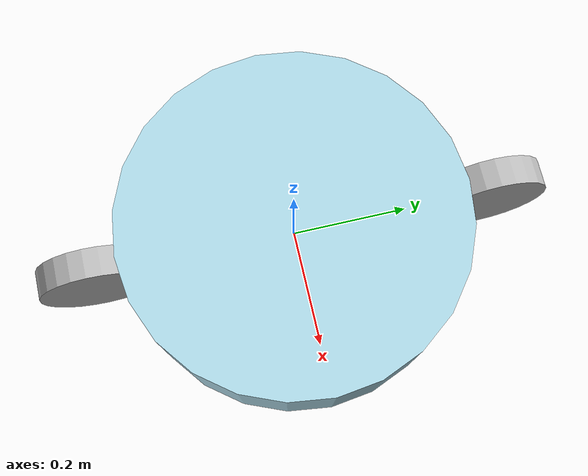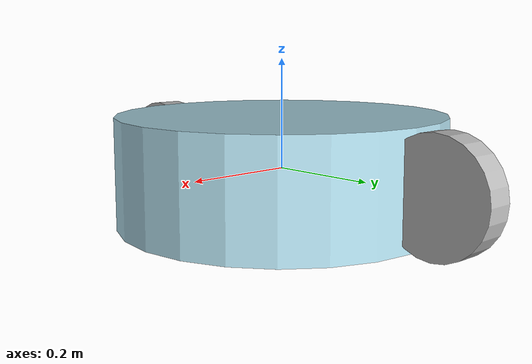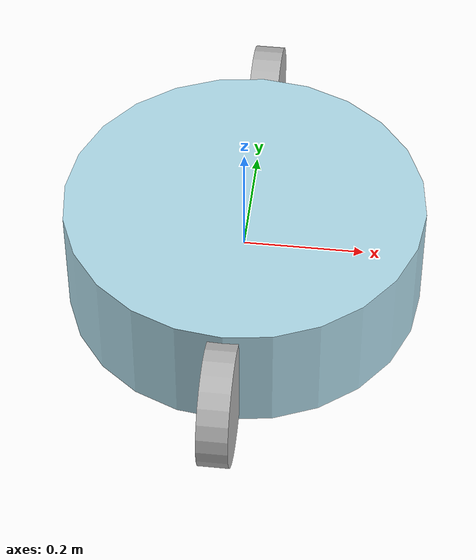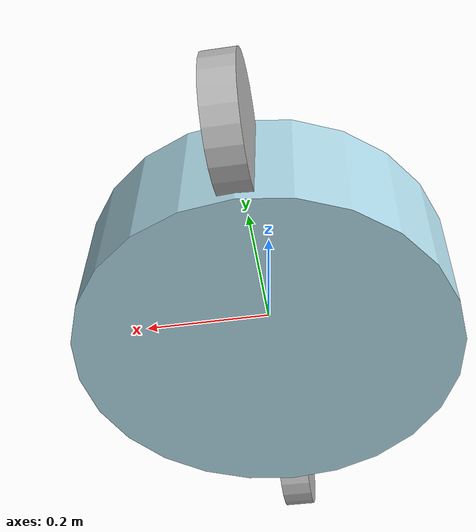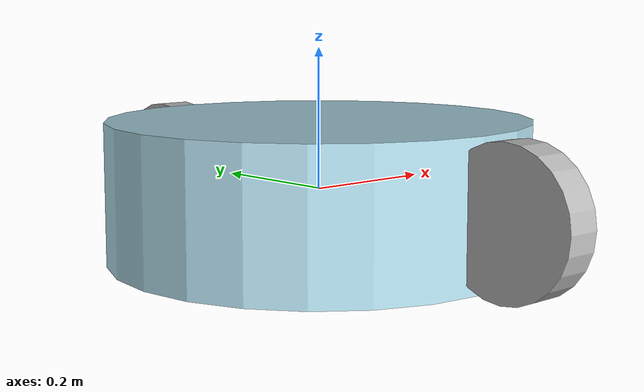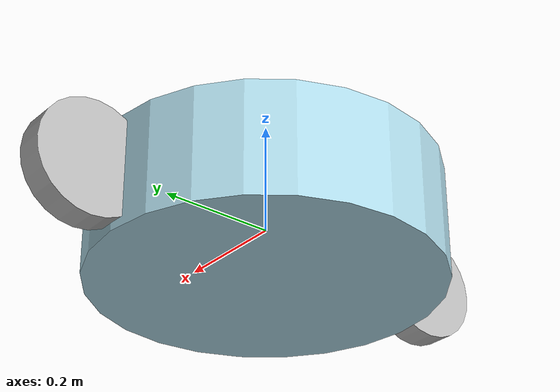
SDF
<?xml version='1.0'?>
<sdf version='1.7'>
  <model name='cleaner_robot_1'>
    <link name='base_link'>
      <inertial>
        <mass>5</mass>
        <inertia>
          <ixx>0.1</ixx>
          <iyy>0.1</iyy>
          <izz>0.1</izz>
          <ixy>0</ixy>
          <ixz>0</ixz>
          <iyz>0</iyz>
        </inertia>
        <pose>0 0 0 0 -0 0</pose>
      </inertial>
      <self_collide>0</self_collide>
      <enable_wind>0</enable_wind>
      <kinematic>0</kinematic>
      <material>
        <ambient>0 0 1 1</ambient>
        <diffuse>0 0 1 1</diffuse>
        <specular>0.1 0.1 0.1 1</specular>
      </material>
      <pose>0 0 0 0 -0 0</pose>
      <gravity>1</gravity>
      <visual name='base_visual'>
        <geometry>
          <cylinder>
            <radius>0.3</radius>
            <length>0.2</length>
          </cylinder>
        </geometry>
        <material>
          <shader type='pixel'>
            <normal_map>__default__</normal_map>
          </shader>
          <script>
            <name>ModelPreview_26::base_link::base_visual_MATERIAL_</name>
          </script>
          <ambient>0.678 0.847 0.902 1</ambient>
          <diffuse>0.678 0.847 0.902 1</diffuse>
          <specular>0.01 0.01 0.01 1</specular>
          <emissive>0 0 0 1</emissive>
        </material>
        <pose>0 0 0 0 -0 0</pose>
        <transparency>0</transparency>
        <cast_shadows>1</cast_shadows>
      </visual>
      <collision name='base_collision'>
        <laser_retro>0</laser_retro>
        <max_contacts>10</max_contacts>
        <pose>0 0 0 0 -0 0</pose>
        <geometry>
          <cylinder>
            <radius>0.3</radius>
            <length>0.2</length>
          </cylinder>
        </geometry>
        <surface>
          <friction>
            <ode>
              <mu>1</mu>
              <mu2>1</mu2>
              <fdir1>0 0 0</fdir1>
              <slip1>0</slip1>
              <slip2>0</slip2>
            </ode>
            <torsional>
              <coefficient>1</coefficient>
              <patch_radius>0</patch_radius>
              <surface_radius>0</surface_radius>
              <use_patch_radius>1</use_patch_radius>
              <ode>
                <slip>0</slip>
              </ode>
            </torsional>
          </friction>
          <bounce>
            <restitution_coefficient>0</restitution_coefficient>
            <threshold>1e+06</threshold>
          </bounce>
          <contact>
            <collide_without_contact>0</collide_without_contact>
            <collide_without_contact_bitmask>1</collide_without_contact_bitmask>
            <collide_bitmask>1</collide_bitmask>
            <ode>
              <soft_cfm>0</soft_cfm>
              <soft_erp>0.2</soft_erp>
              <kp>1e+13</kp>
              <kd>1</kd>
              <max_vel>0.01</max_vel>
              <min_depth>0</min_depth>
            </ode>
            <bullet>
              <split_impulse>1</split_impulse>
              <split_impulse_penetration_threshold>-0.01</split_impulse_penetration_threshold>
              <soft_cfm>0</soft_cfm>
              <soft_erp>0.2</soft_erp>
              <kp>1e+13</kp>
              <kd>1</kd>
            </bullet>
          </contact>
        </surface>
      </collision>
    </link>
    <link name='left_wheel'>
      <pose>-0 0.35 -0 0 1.57 0</pose>
      <inertial>
        <mass>1</mass>
        <inertia>
          <ixx>0.01</ixx>
          <iyy>0.01</iyy>
          <izz>0.01</izz>
          <ixy>0</ixy>
          <ixz>0</ixz>
          <iyz>0</iyz>
        </inertia>
        <pose>0 0 0 0 -0 0</pose>
      </inertial>
      <self_collide>0</self_collide>
      <enable_wind>0</enable_wind>
      <kinematic>0</kinematic>
      <visual name='left_visual'>
        <geometry>
          <cylinder>
            <radius>0.1</radius>
            <length>0.05</length>
          </cylinder>
        </geometry>
        <material>
          <shader type='pixel'/>
        </material>
        <pose>0 0 0 0 -0 0</pose>
        <transparency>0</transparency>
        <cast_shadows>1</cast_shadows>
      </visual>
      <collision name='left_collision'>
        <laser_retro>0</laser_retro>
        <max_contacts>10</max_contacts>
        <pose>0 0 0 0 -0 0</pose>
        <geometry>
          <cylinder>
            <radius>0.1</radius>
            <length>0.05</length>
          </cylinder>
        </geometry>
        <surface>
          <friction>
            <ode>
              <mu>1</mu>
              <mu2>1</mu2>
              <fdir1>0 0 0</fdir1>
              <slip1>0</slip1>
              <slip2>0</slip2>
            </ode>
            <torsional>
              <coefficient>1</coefficient>
              <patch_radius>0</patch_radius>
              <surface_radius>0</surface_radius>
              <use_patch_radius>1</use_patch_radius>
              <ode>
                <slip>0</slip>
              </ode>
            </torsional>
          </friction>
          <bounce>
            <restitution_coefficient>0</restitution_coefficient>
            <threshold>1e+06</threshold>
          </bounce>
          <contact>
            <collide_without_contact>0</collide_without_contact>
            <collide_without_contact_bitmask>1</collide_without_contact_bitmask>
            <collide_bitmask>1</collide_bitmask>
            <ode>
              <soft_cfm>0</soft_cfm>
              <soft_erp>0.2</soft_erp>
              <kp>1e+13</kp>
              <kd>1</kd>
              <max_vel>0.01</max_vel>
              <min_depth>0</min_depth>
            </ode>
            <bullet>
              <split_impulse>1</split_impulse>
              <split_impulse_penetration_threshold>-0.01</split_impulse_penetration_threshold>
              <soft_cfm>0</soft_cfm>
              <soft_erp>0.2</soft_erp>
              <kp>1e+13</kp>
              <kd>1</kd>
            </bullet>
          </contact>
        </surface>
      </collision>
    </link>
    <link name='right_wheel'>
      <pose>0 -0.35 0 0 1.57 0</pose>
      <inertial>
        <mass>1</mass>
        <inertia>
          <ixx>0.01</ixx>
          <iyy>0.01</iyy>
          <izz>0.01</izz>
          <ixy>0</ixy>
          <ixz>0</ixz>
          <iyz>0</iyz>
        </inertia>
        <pose>0 0 0 0 -0 0</pose>
      </inertial>
      <self_collide>0</self_collide>
      <enable_wind>0</enable_wind>
      <kinematic>0</kinematic>
      <visual name='right_visual'>
        <geometry>
          <cylinder>
            <radius>0.1</radius>
            <length>0.05</length>
          </cylinder>
        </geometry>
        <material>
          <shader type='pixel'/>
        </material>
        <pose>0 0 0 0 -0 0</pose>
        <transparency>0</transparency>
        <cast_shadows>1</cast_shadows>
      </visual>
      <collision name='right_collision'>
        <laser_retro>0</laser_retro>
        <max_contacts>10</max_contacts>
        <pose>0 0 0 0 -0 0</pose>
        <geometry>
          <cylinder>
            <radius>0.1</radius>
            <length>0.05</length>
          </cylinder>
        </geometry>
        <surface>
          <friction>
            <ode>
              <mu>1</mu>
              <mu2>1</mu2>
              <fdir1>0 0 0</fdir1>
              <slip1>0</slip1>
              <slip2>0</slip2>
            </ode>
            <torsional>
              <coefficient>1</coefficient>
              <patch_radius>0</patch_radius>
              <surface_radius>0</surface_radius>
              <use_patch_radius>1</use_patch_radius>
              <ode>
                <slip>0</slip>
              </ode>
            </torsional>
          </friction>
          <bounce>
            <restitution_coefficient>0</restitution_coefficient>
            <threshold>1e+06</threshold>
          </bounce>
          <contact>
            <collide_without_contact>0</collide_without_contact>
            <collide_without_contact_bitmask>1</collide_without_contact_bitmask>
            <collide_bitmask>1</collide_bitmask>
            <ode>
              <soft_cfm>0</soft_cfm>
              <soft_erp>0.2</soft_erp>
              <kp>1e+13</kp>
              <kd>1</kd>
              <max_vel>0.01</max_vel>
              <min_depth>0</min_depth>
            </ode>
            <bullet>
              <split_impulse>1</split_impulse>
              <split_impulse_penetration_threshold>-0.01</split_impulse_penetration_threshold>
              <soft_cfm>0</soft_cfm>
              <soft_erp>0.2</soft_erp>
              <kp>1e+13</kp>
              <kd>1</kd>
            </bullet>
          </contact>
        </surface>
      </collision>
    </link>
    <joint name='left_wheel_joint' type='revolute'>
      <parent>base_link</parent>
      <child>left_wheel</child>
      <pose>0 0 0 0 -0 0</pose>
      <axis>
        <xyz>0 1 0</xyz>
        <limit>
          <lower>-1000</lower>
          <upper>1000</upper>
          <effort>-1</effort>
          <velocity>-1</velocity>
        </limit>
        <dynamics>
          <spring_reference>0</spring_reference>
          <spring_stiffness>0</spring_stiffness>
          <damping>0</damping>
          <friction>0</friction>
        </dynamics>
      </axis>
      <physics>
        <ode>
          <limit>
            <cfm>0</cfm>
            <erp>0.2</erp>
          </limit>
          <suspension>
            <cfm>0</cfm>
            <erp>0.2</erp>
          </suspension>
        </ode>
      </physics>
    </joint>
    <joint name='right_wheel_joint' type='revolute'>
      <parent>base_link</parent>
      <child>right_wheel</child>
      <pose>0 0 0 0 -0 0</pose>
      <axis>
        <xyz>0 1 0</xyz>
        <limit>
          <lower>-1000</lower>
          <upper>1000</upper>
          <effort>-1</effort>
          <velocity>-1</velocity>
        </limit>
        <dynamics>
          <spring_reference>0</spring_reference>
          <spring_stiffness>0</spring_stiffness>
          <damping>0</damping>
          <friction>0</friction>
        </dynamics>
      </axis>
      <physics>
        <ode>
          <limit>
            <cfm>0</cfm>
            <erp>0.2</erp>
          </limit>
          <suspension>
            <cfm>0</cfm>
            <erp>0.2</erp>
          </suspension>
        </ode>
      </physics>
    </joint>
    <static>0</static>
    <allow_auto_disable>1</allow_auto_disable>
    <plugin name='cleaner_diff_drive' filename='libgazebo_ros_diff_drive.so'>
      <ros>
        <namespace>/cleaner_robot_1</namespace>
      </ros>
      <left_joint>left_wheel_joint</left_joint>
      <right_joint>right_wheel_joint</right_joint>
      <wheel_separation>0.7</wheel_separation>
      <wheel_diameter>0.2</wheel_diameter>
      <command_topic>cmd_vel</command_topic>
      <odometry_topic>odom</odometry_topic>
    </plugin>
  </model>
</sdf>
